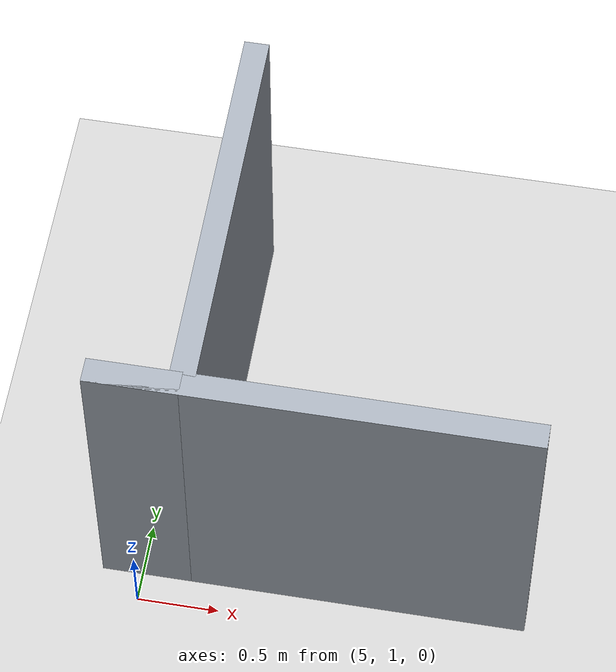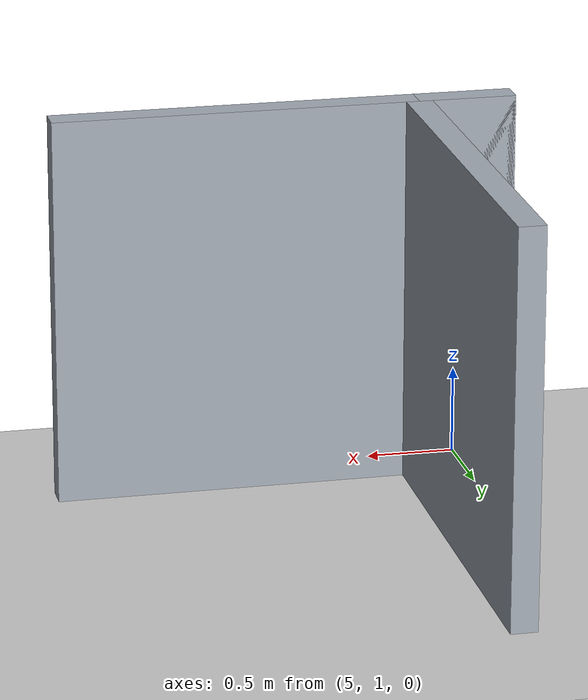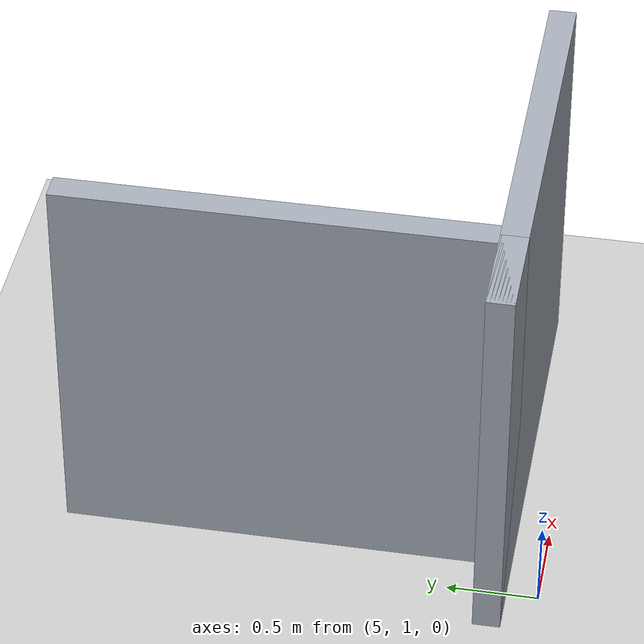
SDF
<sdf version="1.9">
 <world name="default">
  <model name="ground_plane">
   <static>true</static>
   <pose>5.05 0 -0.05 0 0 0</pose>
   <link name="body">
    <collision name="collision"><geometry><box><size>14.1 12 0.1</size></box></geometry></collision>
    <visual name="visual">
     <geometry><box><size>14.1 12 0.1</size></box></geometry>
     <material><ambient>0.8 0.8 0.8 1</ambient><diffuse>0.8 0.8 0.8 1</diffuse></material>
    </visual>
   </link>
  </model>
  <model name="room_1_1_1">
   <static>true</static>
   <pose>5.3 2.45 1.1 0 0 0</pose>
   <link name="body">
    <collision name="collision"><geometry><box><size>0.15 2.4 2.2</size></box></geometry></collision>
    <visual name="visual">
     <geometry><box><size>0.15 2.4 2.2</size></box></geometry>
     <material><ambient>0.65 0.68 0.72 1</ambient><diffuse>0.65 0.68 0.72 1</diffuse></material>
    </visual>
   </link>
  </model>
  <model name="jamb_1_1_1">
   <static>true</static>
   <pose>5.025 1.25 1.1 0 0 0</pose>
   <link name="body">
    <collision name="collision"><geometry><box><size>0.55 0.15 2.2</size></box></geometry></collision>
    <visual name="visual">
     <geometry><box><size>0.55 0.15 2.2</size></box></geometry>
     <material><ambient>0.65 0.68 0.72 1</ambient><diffuse>0.65 0.68 0.72 1</diffuse></material>
    </visual>
   </link>
  </model>
  <model name="hall_1_2">
   <static>true</static>
   <pose>6.05 1.25 1.1 0 0 0</pose>
   <link name="body">
    <collision name="collision">
     <geometry><box><size>2.5999999999999996 0.15 2.2</size></box></geometry>
    </collision>
    <visual name="visual">
     <geometry><box><size>2.5999999999999996 0.15 2.2</size></box></geometry>
     <material><ambient>0.65 0.68 0.72 1</ambient><diffuse>0.65 0.68 0.72 1</diffuse></material>
    </visual>
   </link>
  </model>
 </world>
</sdf>
